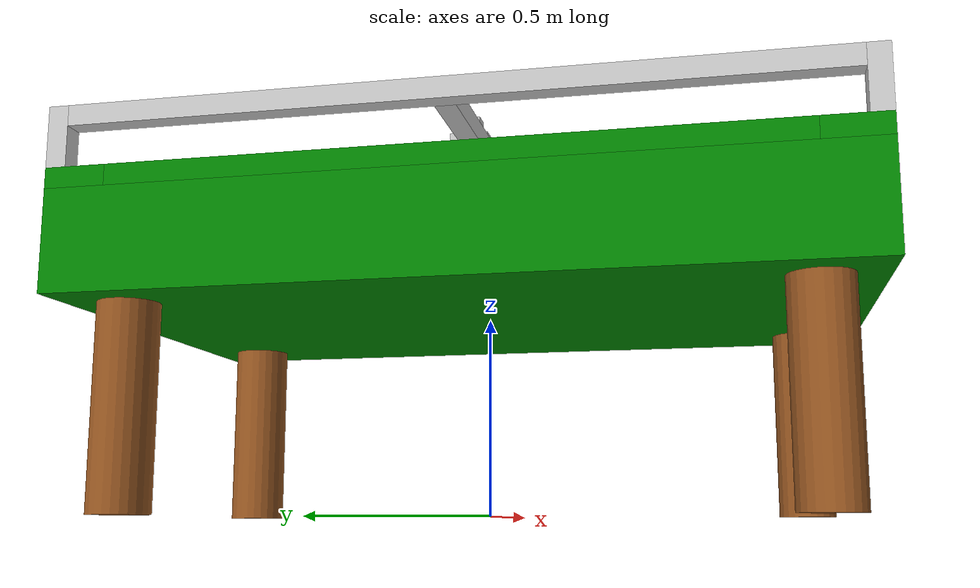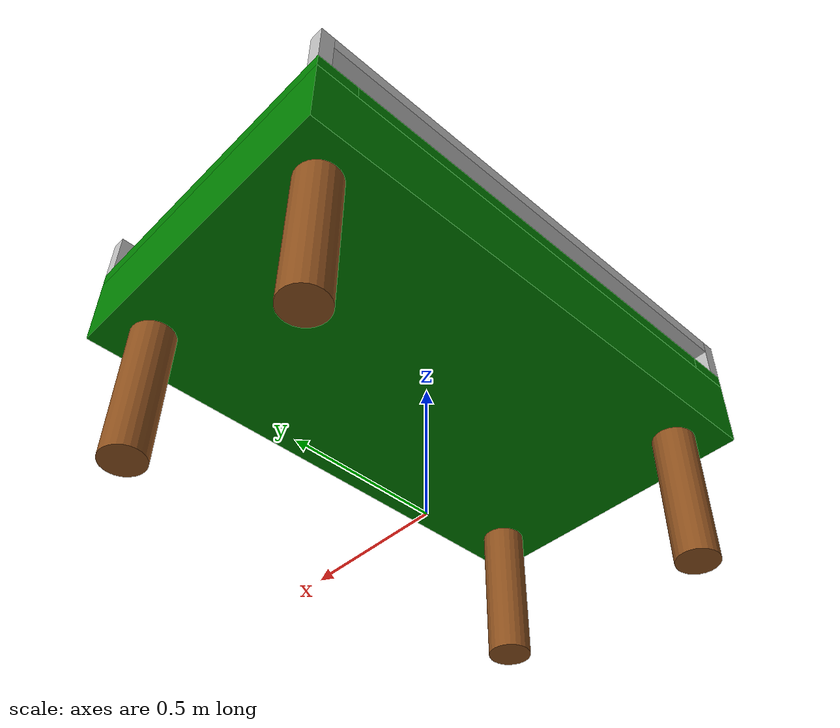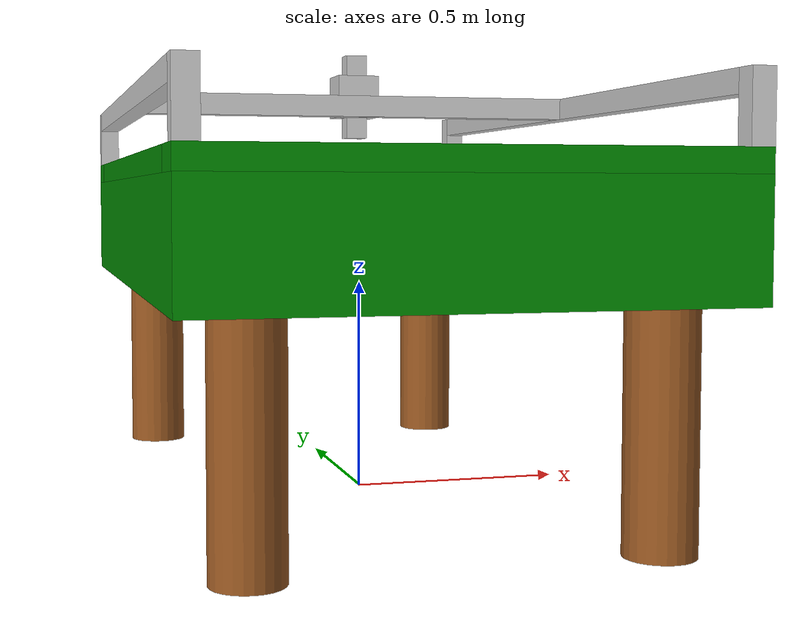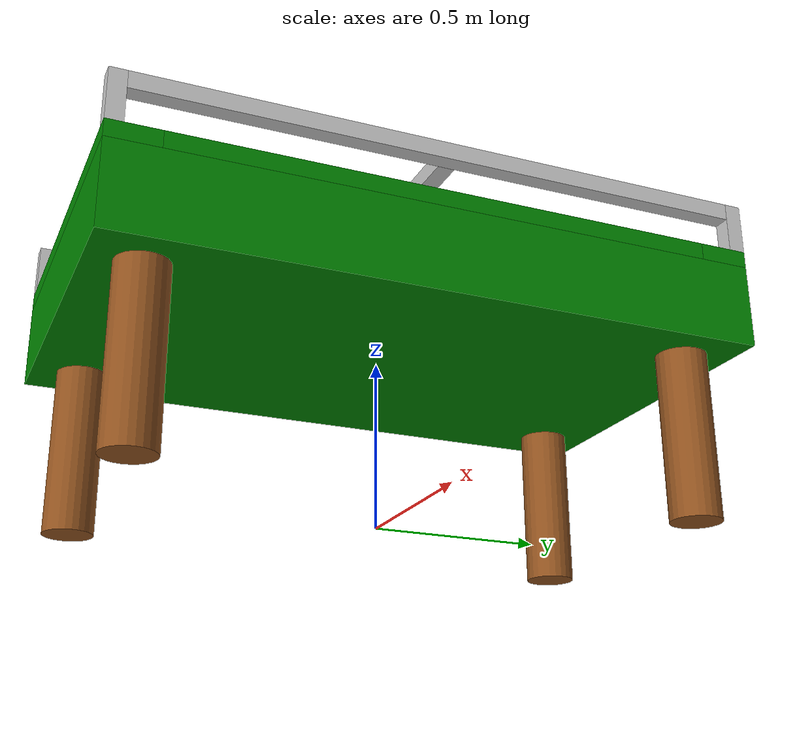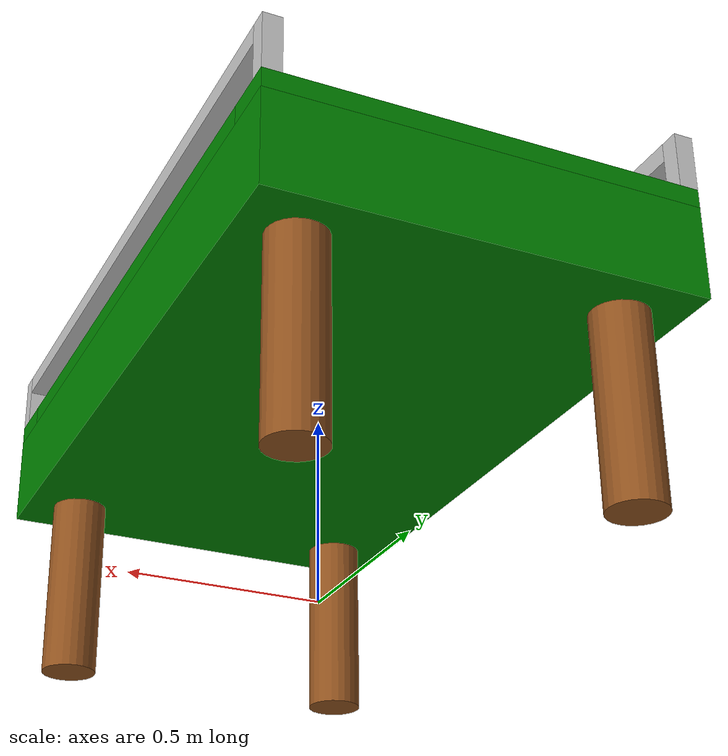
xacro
<?xml version="1.0"?>
<robot xmlns:xacro="http://www.ros.org/wiki/xacro" name="pool_table">

  <!-- Define Materials -->
  <material name="black">
    <color rgba="0 0 0 1"/>
  </material>

  <material name="grey">
    <color rgba="0.75 0.75 0.75 1"/>
  </material>

  <material name="white">
    <color rgba="1 1 1 1"/>
  </material>

  <material name="brown">
    <color rgba="0.56 0.32 0.12 1"/>
  </material>

  <material name="green">
    <color rgba="0 0.5 0 1"/>
  </material>

  <!-- Table -->
  <!-- Define Parameters -->
  <xacro:property name="table_leg_radius" value="0.075"/>
  <xacro:property name="table_leg_length" value="0.5"/>

  <xacro:property name="table_inner_width" value="0.82"/>
  <xacro:property name="table_outer_width" value="1.12"/>
  <xacro:property name="table_inner_length" value="1.6"/>
  <xacro:property name="table_outer_length" value="1.9"/>
  <xacro:property name="table_inner_height" value="0.75"/>
  <xacro:property name="table_outer_height" value="0.8"/>

  <xacro:property name="tabletop_inner_height" value="${table_inner_height-table_leg_length}"/>
  <xacro:property name="tabletop_outer_height" value="${table_outer_height-table_leg_length}"/>

  <!-- Define macro for table legs -->
  <xacro:macro name="table_leg" params="name">
    <link name="table_leg_${name}">
      <visual>
        <geometry>
          <cylinder radius="${table_leg_radius}" length="${table_leg_length}"/>
        </geometry>
        <origin xyz="0 0 -${table_leg_length/2}"/>
        <material name="brown"/>
      </visual>
      <collision>
        <geometry>
          <cylinder radius="${table_leg_radius}" length="${table_leg_length}"/>
        </geometry>
        <origin xyz="0 0 -${table_leg_length/2}"/>
      </collision>
    </link>
  </xacro:macro>

  <!-- Define macro for table edges -->
  <xacro:macro name="table_end" params="name">
    <link name="table_end_${name}">
      <visual>
        <geometry>
          <box size="${table_outer_width} ${(table_outer_length-table_inner_length)/2} ${table_outer_height-table_inner_height}"/>
        </geometry>
        <origin xyz="0 0 ${(table_outer_height-table_inner_height)/2}"/>
        <material name="green"/>
      </visual>
      <collision>
        <geometry>
          <box size="${table_outer_width} ${(table_outer_length-table_inner_length)/2} ${table_outer_height-table_inner_height}"/>
        </geometry>
      </collision>
      <origin xyz="0 0 ${(table_outer_height-table_inner_height)/2}"/>
    </link>
  </xacro:macro>

    <xacro:macro name="table_side" params="name">
    <link name="table_side_${name}">
      <visual>
        <geometry>
          <box size="${(table_outer_width-table_inner_width)/2} ${table_inner_length} ${table_outer_height-table_inner_height}"/>
        </geometry>
        <origin xyz="0 0 ${(table_outer_height-table_inner_height)/2}"/>
        <material name="green"/>
      </visual>
      <collision>
        <geometry>
          <box size="${(table_outer_width-table_inner_width)/2} ${table_inner_length} ${table_outer_height-table_inner_height}"/>
        </geometry>
      </collision>
      <origin xyz="0 0 ${(table_outer_height-table_inner_height)/2}"/>
    </link>
  </xacro:macro>

  <!-- Define links and joints -->
  <link name="world">
  </link>

  <link name="tabletop">
    <visual>
      <geometry>
        <box size="${table_outer_width} ${table_outer_length} ${tabletop_inner_height}"/>
      </geometry>
      <origin xyz="0 0 ${(tabletop_inner_height)/2}"/>
      <material name="green"/>
    </visual>
    <collision>
      <geometry>
        <box size="${table_outer_width} ${table_outer_length} ${tabletop_inner_height}"/>
      </geometry>
      <origin xyz="0 0 ${(tabletop_inner_height)/2}"/>
    </collision>
  </link>
  <joint name="tabletop_to_world" type="fixed">
    <parent link="world"/>
    <child link="tabletop"/>
    <origin xyz="0 0 ${table_leg_length}"/>
  </joint>

  <xacro:table_leg name="FL"/>
  <xacro:table_leg name="BL"/>
  <xacro:table_leg name="FR"/>
  <xacro:table_leg name="BR"/>

  <joint name="table_leg_FL_to_tabletop" type="fixed">
    <parent link="tabletop"/>
    <child link="table_leg_FL"/>
    <origin xyz="${table_inner_width/2} ${table_inner_length/2} 0"/>
  </joint>
  <joint name="table_leg_BL_to_tabletop" type="fixed">
    <parent link="tabletop"/>
    <child link="table_leg_BL"/>
    <origin xyz="${-table_inner_width/2} ${table_inner_length/2} 0"/>
  </joint>
  <joint name="table_leg_FR_to_tabletop" type="fixed">
    <parent link="tabletop"/>
    <child link="table_leg_FR"/>
    <origin xyz="${table_inner_width/2} ${-table_inner_length/2} 0"/>
  </joint>
  <joint name="table_leg_BR_to_tabletop" type="fixed">
    <parent link="tabletop"/>
    <child link="table_leg_BR"/>
    <origin xyz="${-table_inner_width/2} ${-table_inner_length/2} 0"/>
  </joint>

  <xacro:table_end name="F"/>
  <xacro:table_end name="B"/>
  <xacro:table_side name="L"/>
  <xacro:table_side name="R"/>

  <joint name="table_end_F_to_tabletop" type="fixed">
    <parent link="tabletop"/>
    <child link="table_end_F"/>
    <origin xyz="0 -${(table_outer_length-(table_outer_length-table_inner_length)/2)/2} ${tabletop_inner_height}"/>
  </joint>
  <joint name="table_end_B_to_tabletop" type="fixed">
    <parent link="tabletop"/>
    <child link="table_end_B"/>
    <origin xyz="0 ${(table_outer_length-(table_outer_length-table_inner_length)/2)/2} ${tabletop_inner_height}"/>
  </joint>
  <joint name="table_side_L_to_tabletop" type="fixed">
    <parent link="tabletop"/>
    <child link="table_side_L"/>
    <origin xyz="-${(table_outer_width-(table_outer_width-table_inner_width)/2)/2} 0 ${tabletop_inner_height}"/>
  </joint>
  <joint name="table_side_R_to_tabletop" type="fixed">
    <parent link="tabletop"/>
    <child link="table_side_R"/>
    <origin xyz="${(table_outer_width-(table_outer_width-table_inner_width)/2)/2} 0 ${tabletop_inner_height}"/>
  </joint>

  <!-- Robot -->
  <!-- Define Parameters for robot -->
  <!-- Define Parameters -->
  <xacro:property name="bot_leg_width" value="0.05"/>
  <xacro:property name="bot_leg_height" value="0.15"/>
  <xacro:property name="bot_length" value="${table_outer_length-bot_leg_width}"/>
  <xacro:property name="bot_width" value="${table_outer_width-bot_leg_width}"/>

  <!-- Define Macros for robot -->

  <xacro:macro name="bot_leg" params="name">
    <link name="bot_leg_${name}">
      <visual>
        <geometry>
          <box size="${bot_leg_width} ${bot_leg_width} ${bot_leg_height}"/>
        </geometry>
        <origin xyz="0 0 0.075"/>
        <material name="grey"/>
      </visual>
      <collision>
        <geometry>
          <box size="${bot_leg_width} ${bot_leg_width} ${bot_leg_height}"/>
        </geometry>
        <origin xyz="0 0 ${bot_leg_height/2}"/>
      </collision>
    </link>
  </xacro:macro>

    <xacro:macro name="rail_l" params="name">
    <link name="rail_l_${name}">
      <visual>
        <geometry>
          <box size="${bot_leg_width} ${bot_length-bot_leg_width} ${bot_leg_width}"/>
        </geometry>
        <origin xyz="0 0 -${bot_leg_width/2}"/>
        <material name="grey"/>
      </visual>
      <collision>
        <geometry>
          <box size="${bot_leg_width} ${bot_length-bot_leg_width} ${bot_leg_width}"/>
        </geometry>
        <origin xyz="0 0 -${bot_leg_width/2}"/>
      </collision>
    </link>
  </xacro:macro>

  <!-- Define Links and Joints for robot -->
  <xacro:bot_leg name="FL"/>
  <xacro:bot_leg name="BL"/>
  <xacro:bot_leg name="FR"/>
  <xacro:bot_leg name="BR"/>

  <joint name="bot_leg_FL_to_tabletop" type="fixed">
    <parent link="tabletop"/>
    <child link="bot_leg_FL"/>
    <origin xyz="${bot_width/2} ${(bot_length)/2} ${tabletop_outer_height}"/>
  </joint>
    <joint name="bot_leg_BL_to_tabletop" type="fixed">
    <parent link="tabletop"/>
    <child link="bot_leg_BL"/>
    <origin xyz="-${bot_width/2} ${(bot_length)/2} ${tabletop_outer_height}"/>
  </joint>
  <joint name="bot_leg_FR_to_tabletop" type="fixed">
    <parent link="tabletop"/>
    <child link="bot_leg_FR"/>
    <origin xyz="${bot_width/2} -${(bot_length)/2} ${tabletop_outer_height}"/>
  </joint>
  <joint name="bot_leg_BR_to_tabletop" type="fixed">
    <parent link="tabletop"/>
    <child link="bot_leg_BR"/>
    <origin xyz="-${bot_width/2} -${(bot_length)/2} ${tabletop_outer_height}"/>
  </joint>

  <xacro:rail_l name="F"/>
  <xacro:rail_l name="B"/>

  <joint name="rail_l_F_to_bot_leg_FL" type="fixed">
    <parent link="bot_leg_FL"/>
    <child link="rail_l_F"/>
    <origin xyz="0 -${bot_length/2} ${bot_leg_height}"/>
  </joint>
  <joint name="rail_l_B_to_bot_leg_BL" type="fixed">
    <parent link="bot_leg_BL"/>
    <child link="rail_l_B"/>
    <origin xyz="0 -${bot_length/2} ${bot_leg_height}"/>
  </joint>

  <link name="rail_w">
    <visual>
      <geometry>
        <box size="${bot_width-bot_leg_width} ${bot_leg_width} ${bot_leg_width}"/>
      </geometry>
      <origin xyz="0 0 -${bot_leg_width/2}"/>
      <material name="grey"/>
    </visual>
    <collision>
      <geometry>
        <box size="${bot_width-bot_leg_width} ${bot_leg_width} ${bot_leg_width}"/>
      </geometry>
      <origin xyz="0 0 -${bot_leg_width/2}"/>
    </collision>
  </link>
  <joint name="rail_w_to_rail_l_F" type="prismatic">
    <parent link="rail_l_F"/>
    <child link="rail_w"/>
    <origin xyz="-${(bot_width)/2} 0 0"/>
    <limit effort="1000.0" lower="-${(bot_length-bot_leg_width)/2}" upper="${(bot_length-bot_leg_width)/2}" velocity="5"/>
    <axis xyz="0 1 0"/>
  </joint>

  <link name="head">
    <visual>
      <geometry>
        <box size="0.1 .1 .1"/>
      </geometry>
      <origin xyz="0 0 0"/>
      <material name="grey"/>
    </visual>
    <collision>
      <geometry>
        <box size="0.1 .1 .2"/>
      </geometry>
      <origin xyz="0 0 0"/>
    </collision>
  </link>
  <joint name="head_to_rail_w" type="prismatic">
    <parent link="rail_w"/>
    <child link="head"/>
    <origin xyz="0 ${bot_leg_width} 0"/>
    <axis xyz="1 0 0"/>
    <limit effort="1000.0" lower="-${(bot_width/2)-bot_leg_width}" upper="${(bot_width/2)-bot_leg_width}" velocity="5"/>
  </joint>

  <link name="rail_z">
    <visual>
      <geometry>
        <box size="${bot_leg_width} ${bot_leg_width} .2"/>
      </geometry>
      <origin xyz="0 0 0.1"/>
      <material name="grey"/>
    </visual>
    <collision>
       <geometry>
        <box size="${bot_leg_width} ${bot_leg_width} .2"/>
      </geometry>
      <origin xyz="0 0 0.1"/>
    </collision>
  </link>
  <joint name="rail_z_to_head" type="prismatic">
    <parent link="head"/>
    <child link="rail_z"/>
    <origin xyz="0 0 -0.1"/>
    <axis xyz="0 0 -1"/>
    <limit effort="1000.0" lower="0" upper="0.1" velocity="5"/>
  </joint>

</robot>
